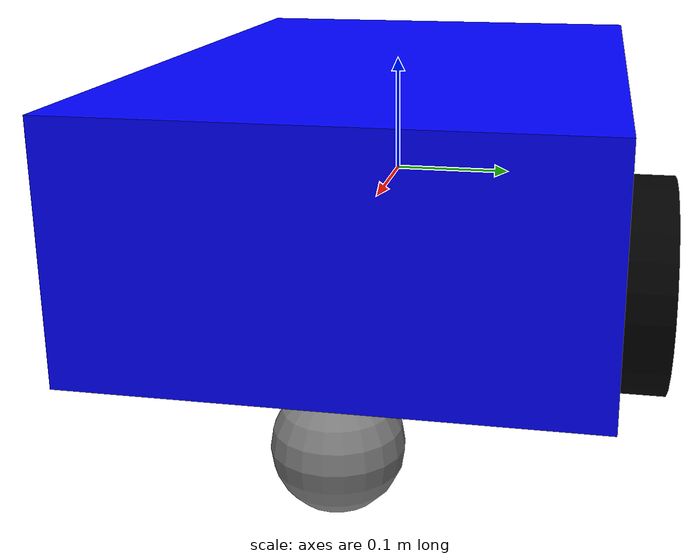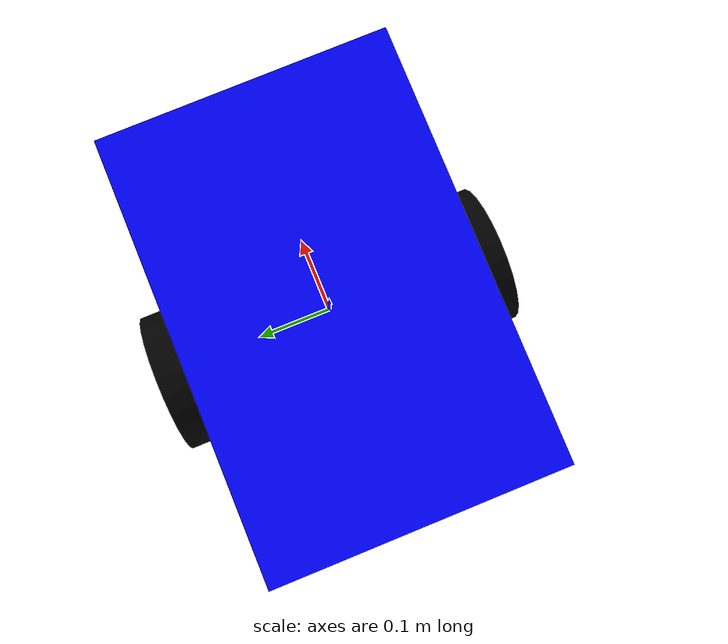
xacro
<?xml version="1.0"?>
<robot name="unal_robot" xmlns:xacro="http://www.ros.org/wiki/xacro">

  <!-- Define materials -->
  <material name="blue">
    <color rgba="0.0 0.0 1.0 1.0"/>
  </material>

  <material name="black">
    <color rgba="0.0 0.0 0.0 1.0"/>
  </material>

  <material name="gray">
    <color rgba="0.5 0.5 0.5 1.0"/>
  </material>

  <material name="red">
    <color rgba="1.0 0.0 0.0 1.0"/>
  </material>

  <!-- Base Link - Main body of the robot -->
  <link name="base_link">
    <visual>
      <geometry>
        <box size="0.6 0.4 0.2"/>
      </geometry>
      <material name="blue"/>
    </visual>
    <collision>
      <geometry>
        <box size="0.6 0.4 0.2"/>
      </geometry>
    </collision>
    <inertial>
      <mass value="10.0"/>
      <inertia ixx="0.4" ixy="0.0" ixz="0.0" iyy="0.6" iyz="0.0" izz="0.8"/>
    </inertial>
  </link>

  <!-- Left Drive Wheel -->
  <link name="left_wheel">
    <visual>
      <geometry>
        <cylinder radius="0.1" length="0.05"/>
      </geometry>
      <material name="black"/>
    </visual>
    <collision>
      <geometry>
        <cylinder radius="0.1" length="0.05"/>
      </geometry>
    </collision>
    <inertial>
      <mass value="1.0"/>
      <inertia ixx="0.01" ixy="0.0" ixz="0.0" iyy="0.01" iyz="0.0" izz="0.005"/>
    </inertial>
  </link>

  <!-- Right Drive Wheel -->
  <link name="right_wheel">
    <visual>
      <geometry>
        <cylinder radius="0.1" length="0.05"/>
      </geometry>
      <material name="black"/>
    </visual>
    <collision>
      <geometry>
        <cylinder radius="0.1" length="0.05"/>
      </geometry>
    </collision>
    <inertial>
      <mass value="1.0"/>
      <inertia ixx="0.01" ixy="0.0" ixz="0.0" iyy="0.01" iyz="0.0" izz="0.005"/>
    </inertial>
  </link>

  <!-- Caster Wheel (Free Wheel) -->
  <link name="caster_wheel">
    <visual>
      <geometry>
        <sphere radius="0.05"/>
      </geometry>
      <material name="gray"/>
    </visual>
    <collision>
      <geometry>
        <sphere radius="0.05"/>
      </geometry>
    </collision>
    <inertial>
      <mass value="0.5"/>
      <inertia ixx="0.001" ixy="0.0" ixz="0.0" iyy="0.001" iyz="0.0" izz="0.001"/>
    </inertial>
  </link>

  <!-- Left Wheel Joint - Continuous joint for drive wheel -->
  <joint name="left_wheel_joint" type="continuous">
    <parent link="base_link"/>
    <child link="left_wheel"/>
    <origin xyz="0.0 0.225 -0.1" rpy="-1.5708 0 0"/>
    <axis xyz="0 0 1"/>
  </joint>

  <!-- Right Wheel Joint - Continuous joint for drive wheel -->
  <joint name="right_wheel_joint" type="continuous">
    <parent link="base_link"/>
    <child link="right_wheel"/>
    <origin xyz="0.0 -0.225 -0.1" rpy="-1.5708 0 0"/>
    <axis xyz="0 0 1"/>
  </joint>

  <!-- Caster Wheel Joint - Fixed joint for free wheel -->
  <joint name="caster_wheel_joint" type="fixed">
    <parent link="base_link"/>
    <child link="caster_wheel"/>
    <origin xyz="0.25 0.0 -0.15" rpy="0 0 0"/>
  </joint>

  <!-- Gazebo plugins for differential drive -->
  <gazebo>
    <plugin name="differential_drive_controller" filename="libgazebo_ros_diff_drive.so">
      <update_rate>50</update_rate>
      <left_joint>left_wheel_joint</left_joint>
      <right_joint>right_wheel_joint</right_joint>
      <wheel_separation>0.45</wheel_separation>
      <wheel_diameter>0.2</wheel_diameter>
      <wheel_acceleration>1.0</wheel_acceleration>
      <wheel_torque>20</wheel_torque>
      <command_topic>cmd_vel</command_topic>
      <odometry_topic>odom</odometry_topic>
      <odometry_frame>odom</odometry_frame>
      <robot_base_frame>base_link</robot_base_frame>
      <publish_odom>true</publish_odom>
      <publish_odom_tf>true</publish_odom_tf>
      <publish_wheel_tf>true</publish_wheel_tf>
    </plugin>
  </gazebo>

  <!-- Gazebo material properties -->
  <gazebo reference="base_link">
    <material>Gazebo/Blue</material>
  </gazebo>

  <gazebo reference="left_wheel">
    <material>Gazebo/Black</material>
    <mu1>0.2</mu1>
    <mu2>0.2</mu2>
    <kp>1000000.0</kp>
    <kd>100.0</kd>
    <minDepth>0.001</minDepth>
    <maxVel>1.0</maxVel>
    <fdir1>1 0 0</fdir1>
  </gazebo>

  <gazebo reference="right_wheel">
    <material>Gazebo/Black</material>
    <mu1>0.2</mu1>
    <mu2>0.2</mu2>
    <kp>1000000.0</kp>
    <kd>100.0</kd>
    <minDepth>0.001</minDepth>
    <maxVel>1.0</maxVel>
    <fdir1>1 0 0</fdir1>
  </gazebo>

  <gazebo reference="caster_wheel">
    <material>Gazebo/Gray</material>
    <mu1>0.0</mu1>
    <mu2>0.0</mu2>
    <kp>1000000.0</kp>
    <kd>100.0</kd>
    <minDepth>0.001</minDepth>
    <maxVel>1.0</maxVel>
    <fdir1>1 0 0</fdir1>
  </gazebo>

</robot>
